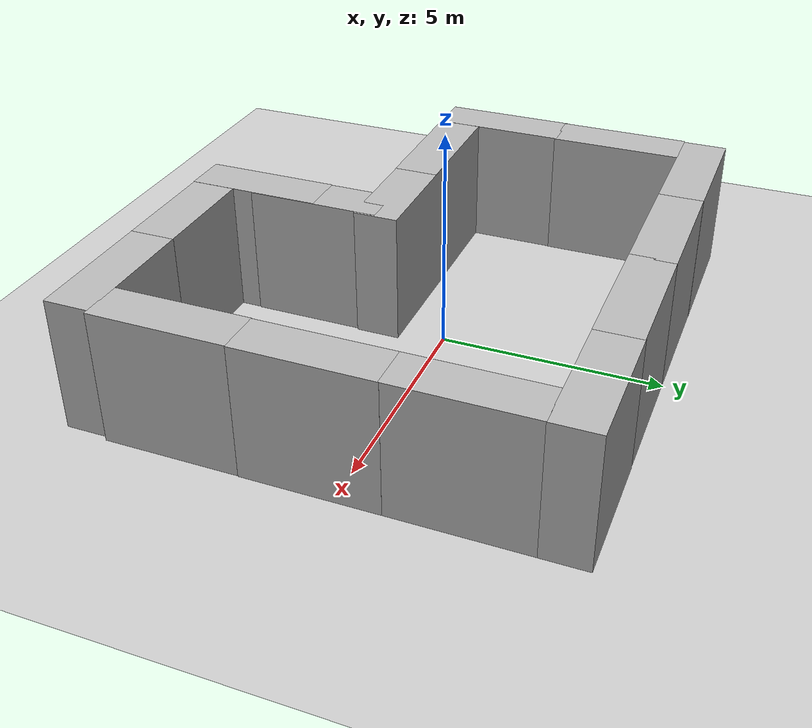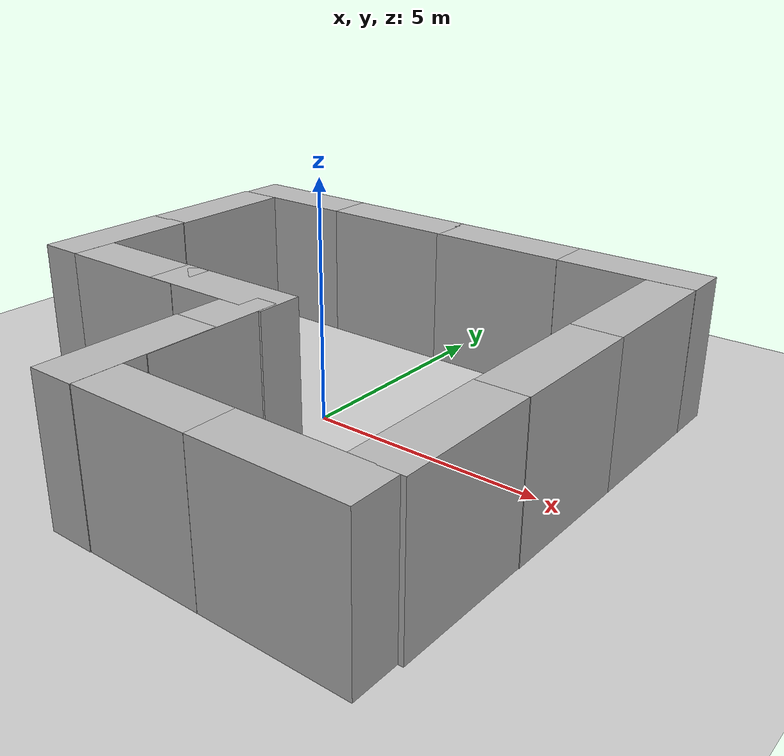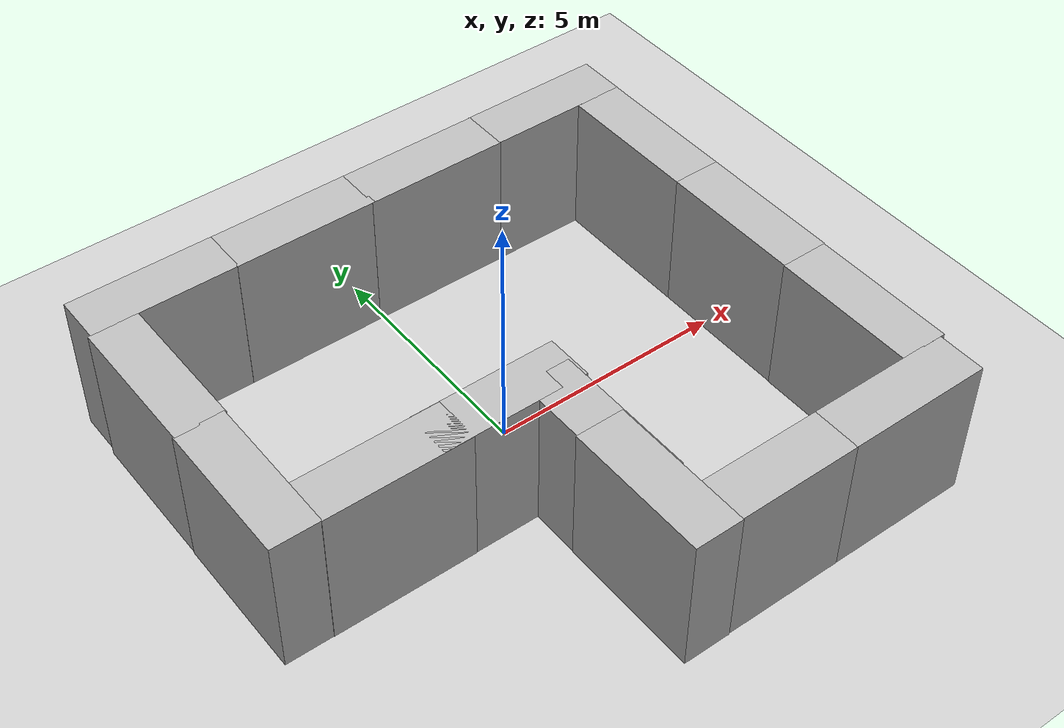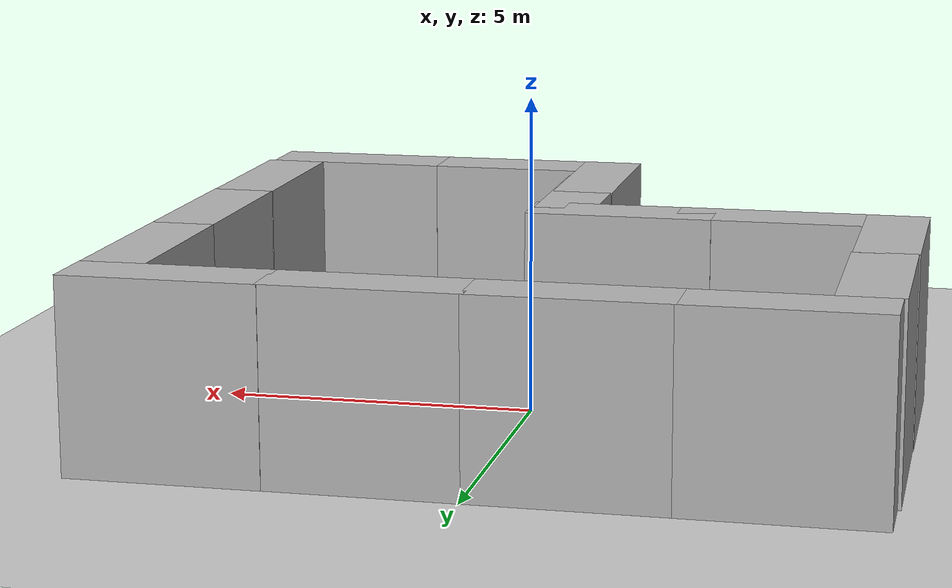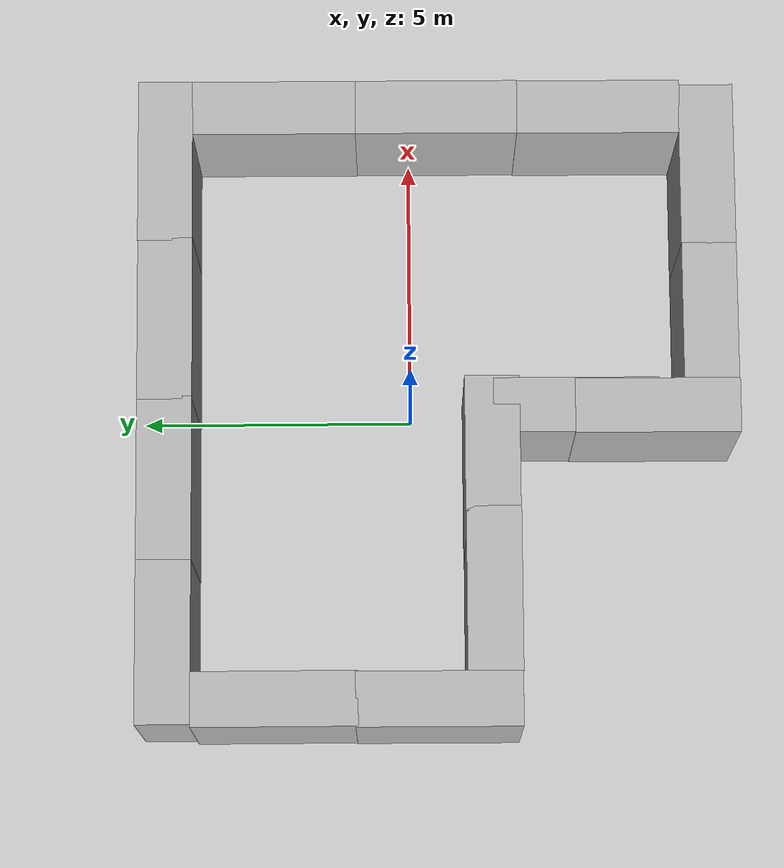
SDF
<sdf version="1.7">
 <world name="default">
  <light name="sun" type="directional">
   <pose>0 0 10 0 -0 0</pose>
   <diffuse>0.8 0.8 0.8 1</diffuse>
   <specular>0.2 0.2 0.2 1</specular>
   <attenuation>
    <range>1000</range>
    <constant>0.9</constant>
    <linear>0.01</linear>
    <quadratic>0.001</quadratic>
   </attenuation>
   <direction>-0.5 0.1 -0.9</direction>
   <spot><inner_angle>0</inner_angle><outer_angle>0</outer_angle><falloff>0</falloff></spot>
  </light>
  <plugin name="ActorPosesPlugin" filename="libActorPosesPlugin.so"/>
  <model name="ground_plane">
   <static>1</static>
   <link name="link">
    <collision name="collision">
     <geometry><plane><normal>0 0 1</normal><size>100 100</size></plane></geometry>
     <surface><friction><ode><mu>100</mu><mu2>50</mu2></ode></friction></surface>
    </collision>
    <visual name="visual">
     <cast_shadows>0</cast_shadows>
     <geometry><plane><normal>0 0 1</normal><size>100 100</size></plane></geometry>
     <material>
      <script><uri>file://media/materials/scripts/gazebo.material</uri><name>Gazebo/Grey</name></script>
     </material>
    </visual>
   </link>
  </model>
  <gravity>0 0 -9.8</gravity>
  <magnetic_field>6e-06 2.3e-05 -4.2e-05</magnetic_field>
  <atmosphere type="adiabatic"/>
  <physics name="default_physics" default="0" type="ode">
   <max_step_size>0.001</max_step_size>
   <real_time_factor>1</real_time_factor>
   <real_time_update_rate>1000</real_time_update_rate>
  </physics>
  <scene><ambient>0.4 0.4 0.4 1</ambient><background>0.7 0.7 0.7 1</background><shadows>1</shadows></scene>
  <spherical_coordinates>
   <surface_model>EARTH_WGS84</surface_model>
   <latitude_deg>0</latitude_deg>
   <longitude_deg>0</longitude_deg>
   <elevation>0</elevation>
   <heading_deg>0</heading_deg>
  </spherical_coordinates>
  <model name="brick_box_3x1x3">
   <static>1</static>
   <link name="chassis">
    <pose>0 0 1.5 0 -0 0</pose>
    <collision name="collision"><geometry><box><size>3 1 3</size></box></geometry></collision>
    <visual name="visual">
     <geometry><mesh><uri>model://brick_box_3x1x3/meshes/simple_box.dae</uri><scale>3 1 3</scale></mesh></geometry>
     <material>
      <script>
       <uri>model://brick_box_3x1x3/materials/scripts</uri>
       <uri>model://brick_box_3x1x3/materials/textures</uri>
       <name>BrickBox/Diffuse</name>
      </script>
     </material>
    </visual>
   </link>
   <pose>1.26795 -5.47887 0 0 -0 0</pose>
  </model>
  <model name="brick_box_3x1x3_0">
   <static>1</static>
   <link name="chassis">
    <pose>0 0 1.5 0 -0 0</pose>
    <collision name="collision"><geometry><box><size>3 1 3</size></box></geometry></collision>
    <visual name="visual">
     <geometry><mesh><uri>model://brick_box_3x1x3/meshes/simple_box.dae</uri><scale>3 1 3</scale></mesh></geometry>
     <material>
      <script>
       <uri>model://brick_box_3x1x3/materials/scripts</uri>
       <uri>model://brick_box_3x1x3/materials/textures</uri>
       <name>BrickBox/Diffuse</name>
      </script>
     </material>
    </visual>
   </link>
   <pose>-1.18507 -1.48544 0 0 -0 0</pose>
  </model>
  <model name="brick_box_3x1x3_1">
   <static>1</static>
   <link name="chassis">
    <pose>0 0 1.5 0 -0 0</pose>
    <collision name="collision"><geometry><box><size>3 1 3</size></box></geometry></collision>
    <visual name="visual">
     <geometry><mesh><uri>model://brick_box_3x1x3/meshes/simple_box.dae</uri><scale>3 1 3</scale></mesh></geometry>
     <material>
      <script>
       <uri>model://brick_box_3x1x3/materials/scripts</uri>
       <uri>model://brick_box_3x1x3/materials/textures</uri>
       <name>BrickBox/Diffuse</name>
      </script>
     </material>
    </visual>
   </link>
   <pose>1.41888 4.45857 0 0 -0 0</pose>
  </model>
  <model name="brick_box_3x1x3_2">
   <static>1</static>
   <link name="chassis">
    <pose>0 0 1.5 0 -0 0</pose>
    <collision name="collision"><geometry><box><size>3 1 3</size></box></geometry></collision>
    <visual name="visual">
     <geometry><mesh><uri>model://brick_box_3x1x3/meshes/simple_box.dae</uri><scale>3 1 3</scale></mesh></geometry>
     <material>
      <script>
       <uri>model://brick_box_3x1x3/materials/scripts</uri>
       <uri>model://brick_box_3x1x3/materials/textures</uri>
       <name>BrickBox/Diffuse</name>
      </script>
     </material>
    </visual>
   </link>
   <pose>-1.52203 4.45965 0 0 -0 0</pose>
  </model>
  <model name="brick_box_3x1x3_3">
   <static>1</static>
   <link name="chassis">
    <pose>0 0 1.5 0 -0 0</pose>
    <collision name="collision"><geometry><box><size>3 1 3</size></box></geometry></collision>
    <visual name="visual">
     <geometry><mesh><uri>model://brick_box_3x1x3/meshes/simple_box.dae</uri><scale>3 1 3</scale></mesh></geometry>
     <material>
      <script>
       <uri>model://brick_box_3x1x3/materials/scripts</uri>
       <uri>model://brick_box_3x1x3/materials/textures</uri>
       <name>BrickBox/Diffuse</name>
      </script>
     </material>
    </visual>
   </link>
   <pose>-5.54163 2.46869 0 0 -0 1.57257</pose>
  </model>
  <model name="brick_box_3x1x3_4">
   <static>1</static>
   <link name="chassis">
    <pose>0 0 1.5 0 -0 0</pose>
    <collision name="collision"><geometry><box><size>3 1 3</size></box></geometry></collision>
    <visual name="visual">
     <geometry><mesh><uri>model://brick_box_3x1x3/meshes/simple_box.dae</uri><scale>3 1 3</scale></mesh></geometry>
     <material>
      <script>
       <uri>model://brick_box_3x1x3/materials/scripts</uri>
       <uri>model://brick_box_3x1x3/materials/textures</uri>
       <name>BrickBox/Diffuse</name>
      </script>
     </material>
    </visual>
   </link>
   <pose>-4.4903 4.46316 0 0 -0 0</pose>
  </model>
  <model name="brick_box_3x1x3_5">
   <static>1</static>
   <link name="chassis">
    <pose>0 0 1.5 0 -0 0</pose>
    <collision name="collision"><geometry><box><size>3 1 3</size></box></geometry></collision>
    <visual name="visual">
     <geometry><mesh><uri>model://brick_box_3x1x3/meshes/simple_box.dae</uri><scale>3 1 3</scale></mesh></geometry>
     <material>
      <script>
       <uri>model://brick_box_3x1x3/materials/scripts</uri>
       <uri>model://brick_box_3x1x3/materials/textures</uri>
       <name>BrickBox/Diffuse</name>
      </script>
     </material>
    </visual>
   </link>
   <pose>4.37771 4.46534 0 0 -0 0</pose>
  </model>
  <model name="brick_box_3x1x3_6">
   <static>1</static>
   <link name="chassis">
    <pose>0 0 1.5 0 -0 0</pose>
    <collision name="collision"><geometry><box><size>3 1 3</size></box></geometry></collision>
    <visual name="visual">
     <geometry><mesh><uri>model://brick_box_3x1x3/meshes/simple_box.dae</uri><scale>3 1 3</scale></mesh></geometry>
     <material>
      <script>
       <uri>model://brick_box_3x1x3/materials/scripts</uri>
       <uri>model://brick_box_3x1x3/materials/textures</uri>
       <name>BrickBox/Diffuse</name>
      </script>
     </material>
    </visual>
   </link>
   <pose>-3.58183 -1.49401 0 0 -0 0</pose>
  </model>
  <model name="brick_box_3x1x3_7">
   <static>1</static>
   <link name="chassis">
    <pose>0 0 1.5 0 -0 0</pose>
    <collision name="collision"><geometry><box><size>3 1 3</size></box></geometry></collision>
    <visual name="visual">
     <geometry><mesh><uri>model://brick_box_3x1x3/meshes/simple_box.dae</uri><scale>3 1 3</scale></mesh></geometry>
     <material>
      <script>
       <uri>model://brick_box_3x1x3/materials/scripts</uri>
       <uri>model://brick_box_3x1x3/materials/textures</uri>
       <name>BrickBox/Diffuse</name>
      </script>
     </material>
    </visual>
   </link>
   <pose>4.25457 -5.47697 0 0 -0 0</pose>
  </model>
  <model name="brick_box_3x1x3_3_clone">
   <static>1</static>
   <link name="chassis">
    <pose>0 0 1.5 0 -0 0</pose>
    <collision name="collision"><geometry><box><size>3 1 3</size></box></geometry></collision>
    <visual name="visual">
     <geometry><mesh><uri>model://brick_box_3x1x3/meshes/simple_box.dae</uri><scale>3 1 3</scale></mesh></geometry>
     <material>
      <script>
       <uri>model://brick_box_3x1x3/materials/scripts</uri>
       <uri>model://brick_box_3x1x3/materials/textures</uri>
       <name>BrickBox/Diffuse</name>
      </script>
     </material>
    </visual>
   </link>
   <pose>-5.55408 -0.484657 3e-06 -0.001926 1e-05 1.56943</pose>
  </model>
  <model name="brick_box_3x1x3_3_clone_clone_clone_2">
   <static>1</static>
   <link name="chassis">
    <pose>0 0 1.5 0 -0 0</pose>
    <collision name="collision"><geometry><box><size>3 1 3</size></box></geometry></collision>
    <visual name="visual">
     <geometry><mesh><uri>model://brick_box_3x1x3/meshes/simple_box.dae</uri><scale>3 1 3</scale></mesh></geometry>
     <material>
      <script>
       <uri>model://brick_box_3x1x3/materials/scripts</uri>
       <uri>model://brick_box_3x1x3/materials/textures</uri>
       <name>BrickBox/Diffuse</name>
      </script>
     </material>
    </visual>
   </link>
   <pose>5.37243 -0.502276 3e-06 -0.001926 1e-05 1.56943</pose>
  </model>
  <model name="brick_box_3x1x3_3_clone_clone_clone_3">
   <static>1</static>
   <link name="chassis">
    <pose>0 0 1.5 0 -0 0</pose>
    <collision name="collision"><geometry><box><size>3 1 3</size></box></geometry></collision>
    <visual name="visual">
     <geometry><mesh><uri>model://brick_box_3x1x3/meshes/simple_box.dae</uri><scale>3 1 3</scale></mesh></geometry>
     <material>
      <script>
       <uri>model://brick_box_3x1x3/materials/scripts</uri>
       <uri>model://brick_box_3x1x3/materials/textures</uri>
       <name>BrickBox/Diffuse</name>
      </script>
     </material>
    </visual>
   </link>
   <pose>5.3756 2.47555 3e-06 -0.001926 1e-05 1.56943</pose>
  </model>
  <model name="brick_box_3x1x3_3_clone_clone">
   <static>1</static>
   <link name="chassis">
    <pose>0 0 1.5 0 -0 0</pose>
    <collision name="collision"><geometry><box><size>3 1 3</size></box></geometry></collision>
    <visual name="visual">
     <geometry><mesh><uri>model://brick_box_3x1x3/meshes/simple_box.dae</uri><scale>3 1 3</scale></mesh></geometry>
     <material>
      <script>
       <uri>model://brick_box_3x1x3/materials/scripts</uri>
       <uri>model://brick_box_3x1x3/materials/textures</uri>
       <name>BrickBox/Diffuse</name>
      </script>
     </material>
    </visual>
   </link>
   <pose>-0.249844 -4.49155 3e-06 -0.001926 1e-05 1.56943</pose>
  </model>
  <model name="brick_box_3x1x3_3_clone_clone_0">
   <static>1</static>
   <link name="chassis">
    <pose>0 0 1.5 0 -0 0</pose>
    <collision name="collision"><geometry><box><size>3 1 3</size></box></geometry></collision>
    <visual name="visual">
     <geometry><mesh><uri>model://brick_box_3x1x3/meshes/simple_box.dae</uri><scale>3 1 3</scale></mesh></geometry>
     <material>
      <script>
       <uri>model://brick_box_3x1x3/materials/scripts</uri>
       <uri>model://brick_box_3x1x3/materials/textures</uri>
       <name>BrickBox/Diffuse</name>
      </script>
     </material>
    </visual>
   </link>
   <pose>5.35638 -3.49548 3e-06 -0.001926 1e-05 1.56943</pose>
  </model>
  <model name="brick_box_3x1x3_3_clone_clone_1">
   <static>1</static>
   <link name="chassis">
    <pose>0 0 1.5 0 -0 0</pose>
    <collision name="collision"><geometry><box><size>3 1 3</size></box></geometry></collision>
    <visual name="visual">
     <geometry><mesh><uri>model://brick_box_3x1x3/meshes/simple_box.dae</uri><scale>3 1 3</scale></mesh></geometry>
     <material>
      <script>
       <uri>model://brick_box_3x1x3/materials/scripts</uri>
       <uri>model://brick_box_3x1x3/materials/textures</uri>
       <name>BrickBox/Diffuse</name>
      </script>
     </material>
    </visual>
   </link>
   <pose>-0.229345 -3.01099 3e-06 -0.001926 1e-05 1.56943</pose>
  </model>
 </world>
</sdf>
